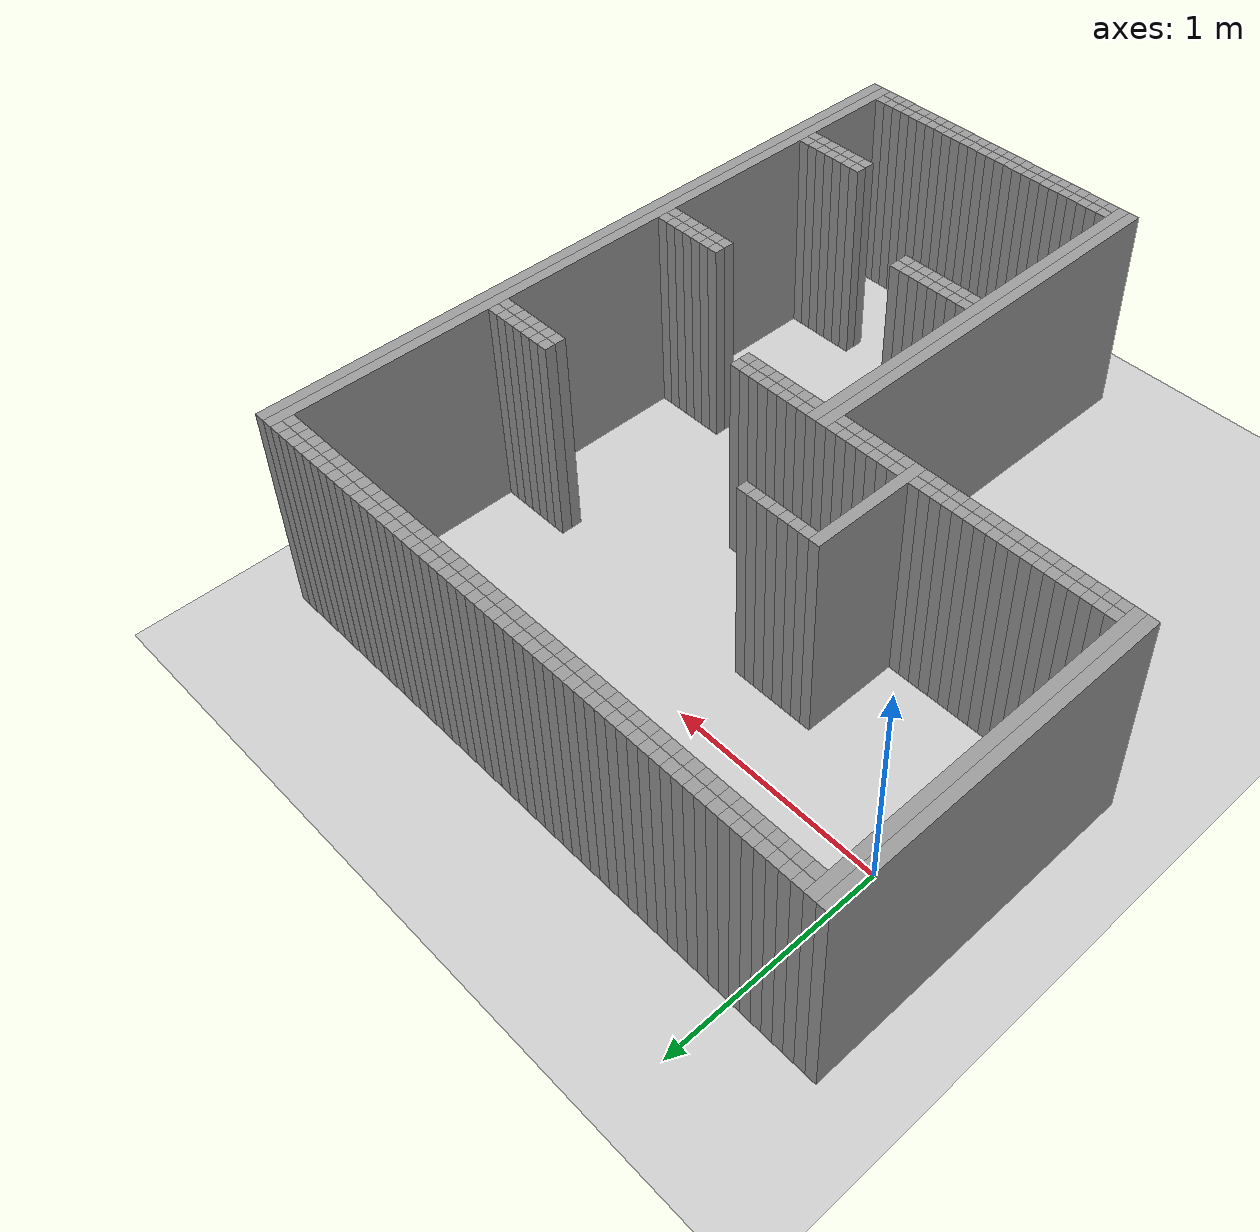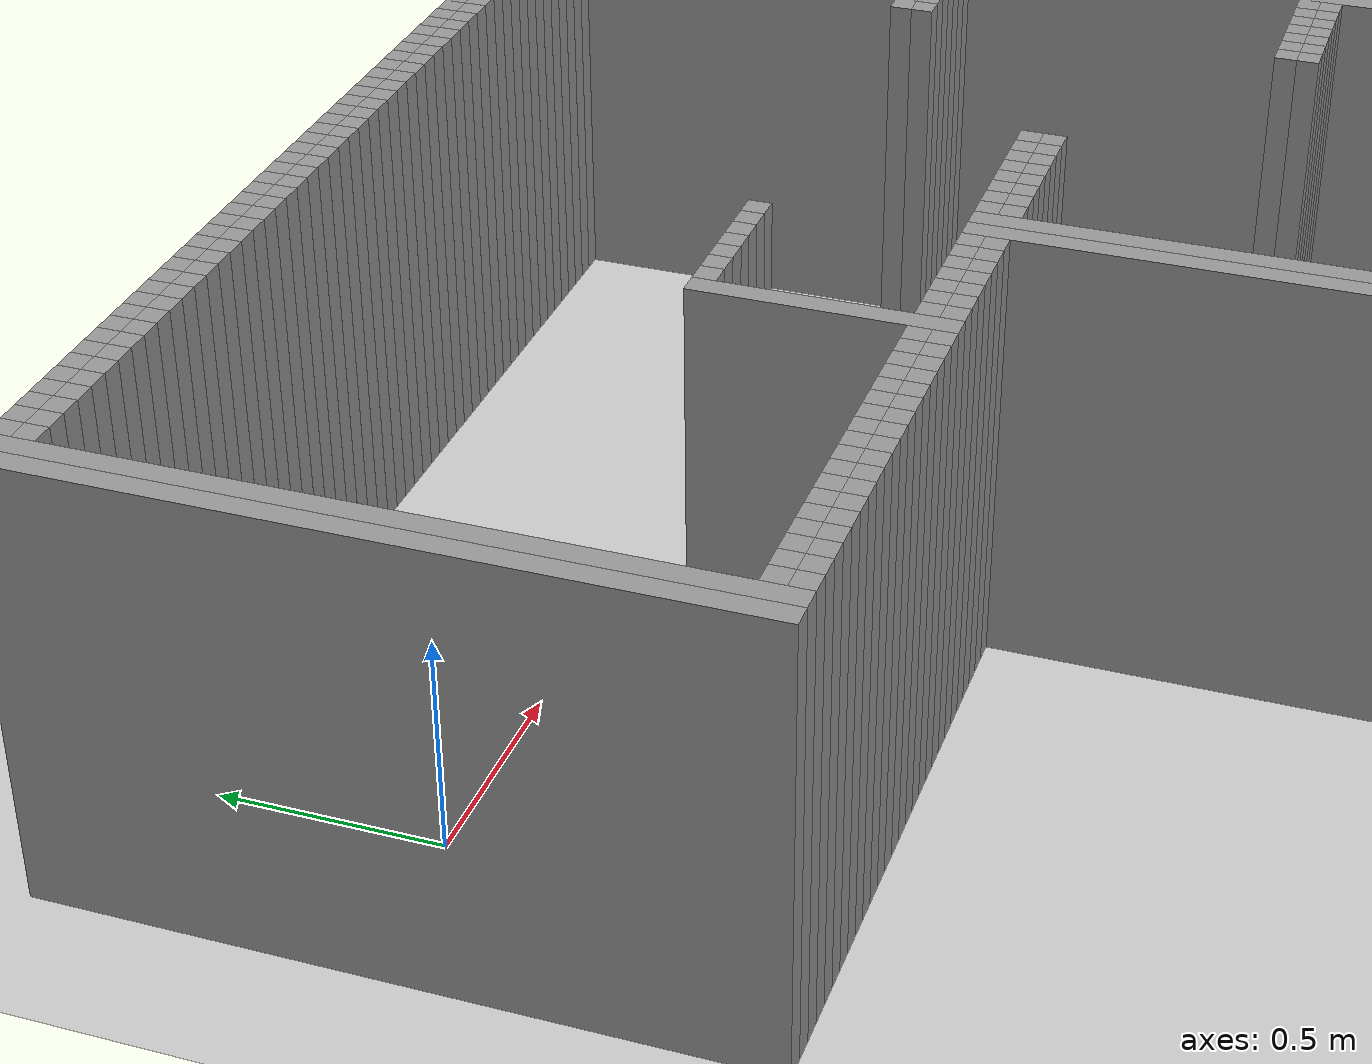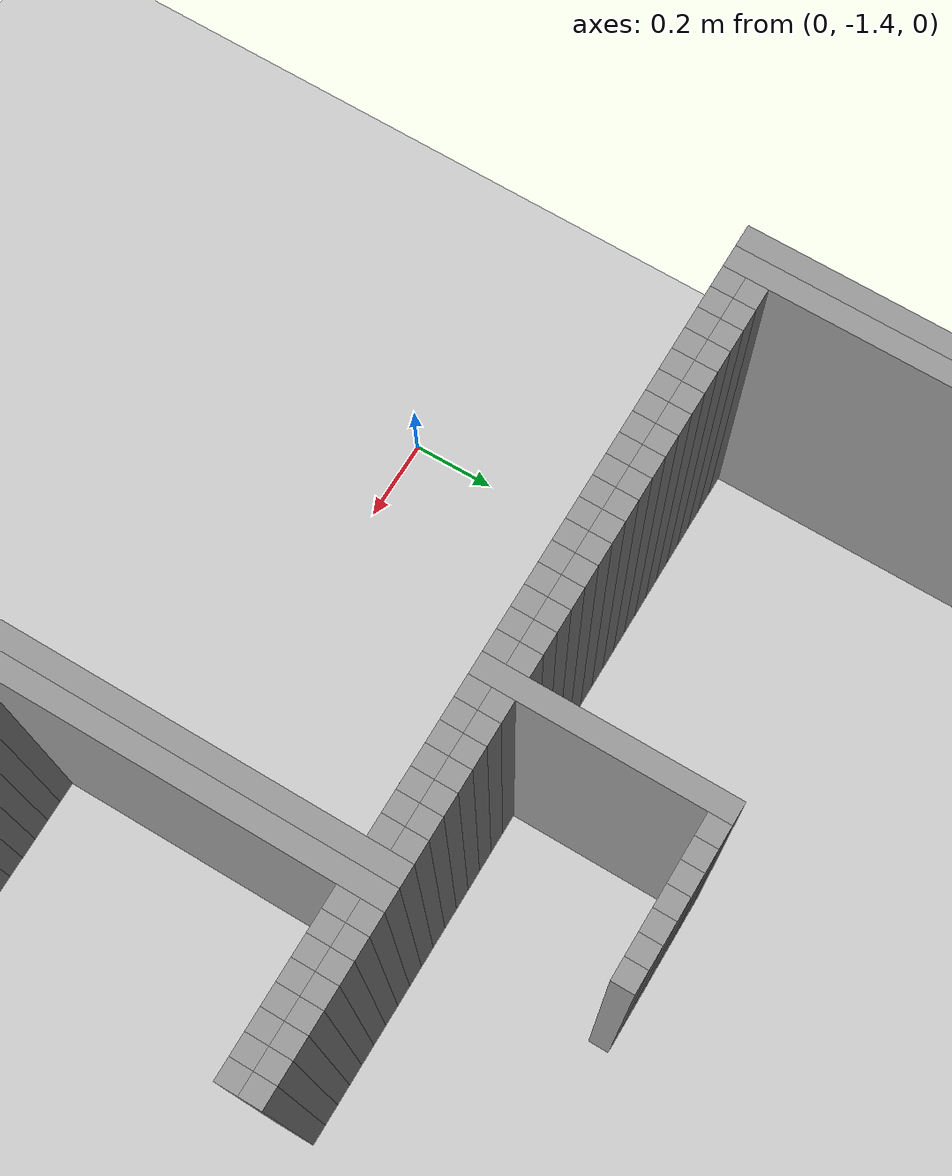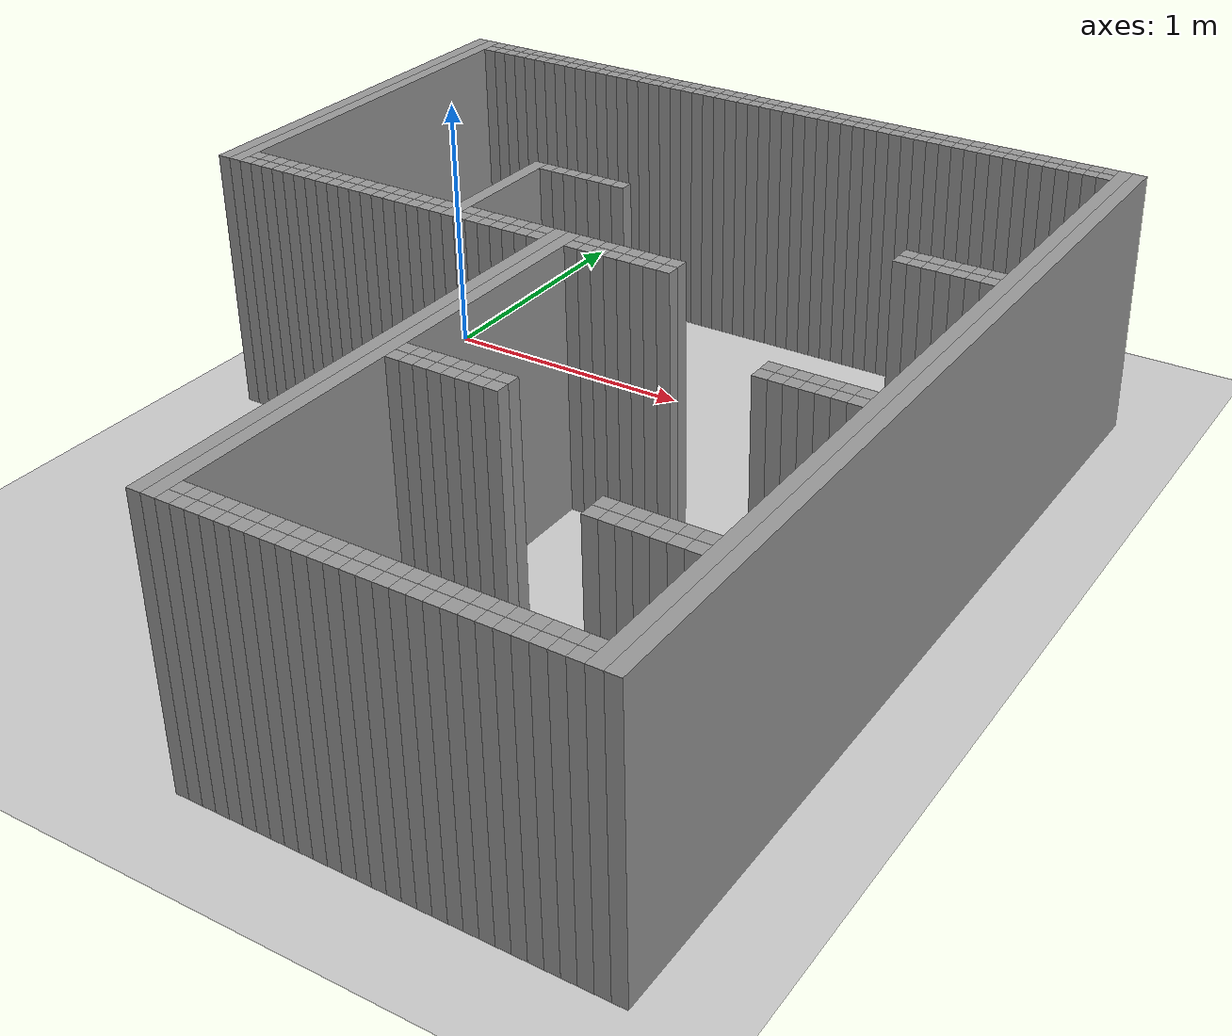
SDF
<?xml version="1.0" ?>
<sdf version="1.6">
  <world name="default">
    <plugin name="gazebo_ros_init" filename="libgazebo_ros_init.so"/>
    <plugin name="gazebo_ros_factory" filename="libgazebo_ros_factory.so"/>
    <plugin name="gazebo_ros_state" filename="libgazebo_ros_state.so"/>

    <!-- 插入默认地面 -->
    <include>
      <uri>model://ground_plane</uri>
    </include>

    <!-- 插入一个光源 -->
    <include>
      <uri>model://sun</uri>
    </include>

    <!-- 插入你生成的墙体 -->
    <include>
      <uri>file:///home/suda/drone_ugv_ws/src/map_struct/models/auto_walls</uri>
    </include>

    <!-- 红色小立方体 -->
    <model name="red_cube_1">
      <pose>0 0.5 0.1 0 0 0</pose>  <!-- z=0.1（高度的一半），确保底部贴地 -->
      <link name="link">
      <kinematic>true</kinematic>
        <collision name="collision">
          <geometry>
            <box>
              <size>0.2 0.2 0.2</size>  <!-- 0.2m长宽高 -->
            </box>
          </geometry>
        </collision>
        <visual name="visual">
          <geometry>
            <box>
              <size>0.2 0.2 0.2</size>  <!-- 视觉尺寸与碰撞尺寸一致 -->
            </box>
          </geometry>
          <material>
            <ambient>1 0 0 1</ambient>   <!-- 红色环境光 -->
            <diffuse>1 0 0 1</diffuse>   <!-- 红色漫反射 -->
            <specular>0.2 0.2 0.2 1</specular>  <!-- 轻微高光 -->
          </material>
        </visual>
        <inertial>
          <mass>0.02</mass>  <!-- 小质量适配小尺寸 -->
          <inertia>
            <!-- 0.2m边长立方体的转动惯量计算：(mass * (a² + b²)) / 12 -->
            <ixx>0.000013</ixx>
            <ixy>0</ixy>
            <ixz>0</ixz>
            <iyy>0.000013</iyy>
            <iyz>0</iyz>
            <izz>0.000013</izz>
          </inertia>
        </inertial>
      </link>
    </model>

    <model name="red_cube_2">
      <pose>1.3 -2.0 0.1 0 0 0</pose>  <!-- z=0.1（高度的一半），确保底部贴地 -->
      <link name="link">
      <kinematic>true</kinematic>
        <collision name="collision">
          <geometry>
            <box>
              <size>0.2 0.2 0.2</size>  <!-- 0.2m长宽高 -->
            </box>
          </geometry>
        </collision>
        <visual name="visual">
          <geometry>
            <box>
              <size>0.2 0.2 0.2</size>  <!-- 视觉尺寸与碰撞尺寸一致 -->
            </box>
          </geometry>
          <material>
            <ambient>1 0 0 1</ambient>   <!-- 红色环境光 -->
            <diffuse>1 0 0 1</diffuse>   <!-- 红色漫反射 -->
            <specular>0.2 0.2 0.2 1</specular>  <!-- 轻微高光 -->
          </material>
        </visual>
        <inertial>
          <mass>0.02</mass>  <!-- 小质量适配小尺寸 -->
          <inertia>
            <!-- 0.2m边长立方体的转动惯量计算：(mass * (a² + b²)) / 12 -->
            <ixx>0.000013</ixx>
            <ixy>0</ixy>
            <ixz>0</ixz>
            <iyy>0.000013</iyy>
            <iyz>0</iyz>
            <izz>0.000013</izz>
          </inertia>
        </inertial>
      </link>
    </model>

  </world>
</sdf>
